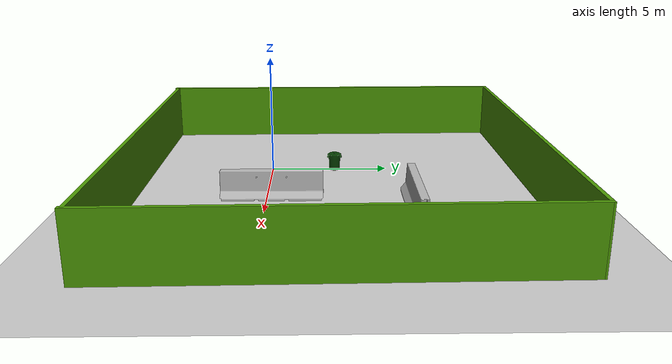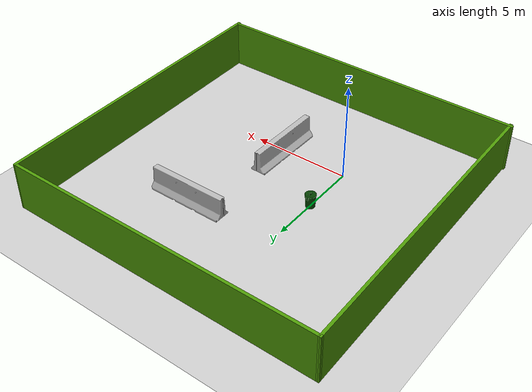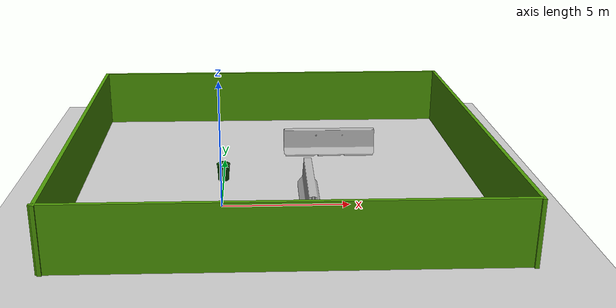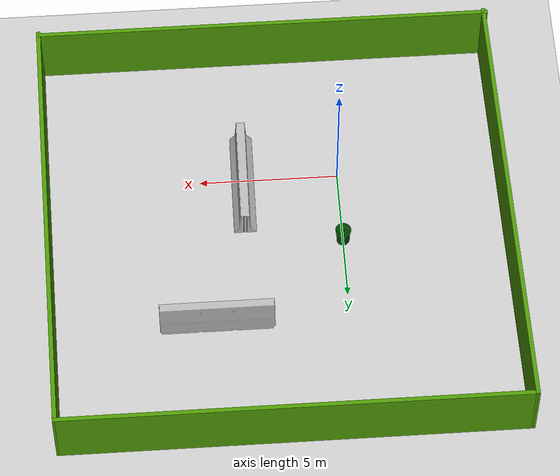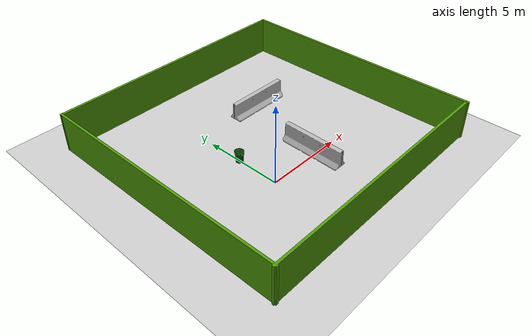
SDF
<sdf version="1.7">
 <world name="default">
  <light name="sun" type="directional">
   <pose>0 0 10 0 -0 0</pose>
   <diffuse>0.8 0.8 0.8 1</diffuse>
   <specular>0.2 0.2 0.2 1</specular>
   <attenuation>
    <range>1000</range>
    <constant>0.9</constant>
    <linear>0.01</linear>
    <quadratic>0.001</quadratic>
   </attenuation>
   <direction>-0.5 0.1 -0.9</direction>
   <spot><inner_angle>0</inner_angle><outer_angle>0</outer_angle><falloff>0</falloff></spot>
  </light>
  <model name="ground_plane">
   <static>1</static>
   <link name="link">
    <collision name="collision">
     <geometry><plane><normal>0 0 1</normal><size>100 100</size></plane></geometry>
     <surface>
      <contact><collide_bitmask>65535</collide_bitmask></contact>
      <friction><ode><mu>100</mu><mu2>50</mu2></ode></friction>
     </surface>
    </collision>
    <visual name="visual">
     <cast_shadows>0</cast_shadows>
     <geometry><plane><normal>0 0 1</normal><size>100 100</size></plane></geometry>
     <material>
      <script><uri>file://media/materials/scripts/gazebo.material</uri><name>Gazebo/Grey</name></script>
     </material>
    </visual>
   </link>
  </model>
  <gravity>0 0 -9.8</gravity>
  <magnetic_field>6e-06 2.3e-05 -4.2e-05</magnetic_field>
  <atmosphere type="adiabatic"/>
  <physics type="ode">
   <max_step_size>0.001</max_step_size>
   <real_time_factor>1</real_time_factor>
   <real_time_update_rate>1000</real_time_update_rate>
  </physics>
  <scene><ambient>0.4 0.4 0.4 1</ambient><background>0.7 0.7 0.7 1</background><shadows>1</shadows></scene>
  <spherical_coordinates>
   <surface_model>EARTH_WGS84</surface_model>
   <latitude_deg>0</latitude_deg>
   <longitude_deg>0</longitude_deg>
   <elevation>0</elevation>
   <heading_deg>0</heading_deg>
  </spherical_coordinates>
  <model name="first_2015_trash_can">
   <link name="link">
    <inertial>
     <pose>0 0 0.3683 0 -0 0</pose>
     <mass>4.83076</mass>
     <inertia>
      <ixx>0.281534</ixx>
      <ixy>0</ixy>
      <ixz>0</ixz>
      <iyy>0.281534</iyy>
      <iyz>0</iyz>
      <izz>0.126223</izz>
     </inertia>
    </inertial>
    <visual name="visual">
     <geometry><mesh><uri>model://first_2015_trash_can/meshes/trash_can.dae</uri></mesh></geometry>
    </visual>
    <collision name="collision">
     <geometry><mesh><uri>model://first_2015_trash_can/meshes/trash_can.dae</uri></mesh></geometry>
    </collision>
   </link>
   <pose>0.0013 2.74082 -3e-06 1e-06 1.2e-05 -0.001142</pose>
  </model>
  <model name="jersey_barrier">
   <static>1</static>
   <link name="link">
    <visual name="visual">
     <geometry><mesh><uri>model://jersey_barrier/meshes/jersey_barrier.dae</uri></mesh></geometry>
    </visual>
    <collision name="upright">
     <pose>0 0 0.5715 0 -0 0</pose>
     <geometry><box><size>4.06542 0.3063 1.143</size></box></geometry>
    </collision>
    <collision name="base">
     <pose>0 0 0.032258 0 -0 0</pose>
     <geometry><box><size>4.06542 0.8107 0.064516</size></box></geometry>
    </collision>
    <collision name="base2">
     <pose>0 0 0.1 0 -0 0</pose>
     <geometry><box><size>4.06542 0.65 0.1</size></box></geometry>
    </collision>
    <collision name="base3">
     <pose>0 0 0.2 0 -0 0</pose>
     <geometry><box><size>4.06542 0.5 0.1</size></box></geometry>
    </collision>
    <collision name="left-angle">
     <pose>0 -0.224 0.2401 0.9 -0 0</pose>
     <geometry><box><size>4.06542 0.5 0.064516</size></box></geometry>
    </collision>
    <collision name="right-angle">
     <pose>0 0.224 0.2401 -0.9 0 0</pose>
     <geometry><box><size>4.06542 0.5 0.064516</size></box></geometry>
    </collision>
   </link>
   <pose>3.45058 0.20811 0 0 0 -1.58285</pose>
  </model>
  <model name="jersey_barrier_0">
   <static>1</static>
   <link name="link">
    <visual name="visual">
     <geometry><mesh><uri>model://jersey_barrier/meshes/jersey_barrier.dae</uri></mesh></geometry>
    </visual>
    <collision name="upright">
     <pose>0 0 0.5715 0 -0 0</pose>
     <geometry><box><size>4.06542 0.3063 1.143</size></box></geometry>
    </collision>
    <collision name="base">
     <pose>0 0 0.032258 0 -0 0</pose>
     <geometry><box><size>4.06542 0.8107 0.064516</size></box></geometry>
    </collision>
    <collision name="base2">
     <pose>0 0 0.1 0 -0 0</pose>
     <geometry><box><size>4.06542 0.65 0.1</size></box></geometry>
    </collision>
    <collision name="base3">
     <pose>0 0 0.2 0 -0 0</pose>
     <geometry><box><size>4.06542 0.5 0.1</size></box></geometry>
    </collision>
    <collision name="left-angle">
     <pose>0 -0.224 0.2401 0.9 -0 0</pose>
     <geometry><box><size>4.06542 0.5 0.064516</size></box></geometry>
    </collision>
    <collision name="right-angle">
     <pose>0 0.224 0.2401 -0.9 0 0</pose>
     <geometry><box><size>4.06542 0.5 0.064516</size></box></geometry>
    </collision>
   </link>
   <pose>4.67893 5.80775 0 0 -0 0</pose>
  </model>
  <model name="my_world03">
   <pose>2.32102 2.69948 0 0 -0 0</pose>
   <link name="Wall_24">
    <collision name="Wall_24_Collision">
     <geometry><box><size>16.1381 0.15 2.5</size></box></geometry>
     <pose>0 0 1.25 0 -0 0</pose>
    </collision>
    <visual name="Wall_24_Visual">
     <pose>0 0 1.25 0 -0 0</pose>
     <geometry><box><size>16.1381 0.15 2.5</size></box></geometry>
     <material>
      <script><uri>file://media/materials/scripts/gazebo.material</uri><name>Gazebo/Grey</name></script>
      <ambient>0.305882 0.603922 0.0235294 1</ambient>
     </material>
     <meta><layer>0</layer></meta>
    </visual>
    <pose>8.175 0 0 0 -0 -1.55752</pose>
   </link>
   <link name="Wall_25">
    <collision name="Wall_25_Collision">
     <geometry><box><size>16.5 0.15 2.5</size></box></geometry>
     <pose>0 0 1.25 0 -0 0</pose>
    </collision>
    <visual name="Wall_25_Visual">
     <pose>0 0 1.25 0 -0 0</pose>
     <geometry><box><size>16.5 0.15 2.5</size></box></geometry>
     <material>
      <script><uri>file://media/materials/scripts/gazebo.material</uri><name>Gazebo/Grey</name></script>
      <ambient>0.305882 0.603922 0.0235294 1</ambient>
     </material>
     <meta><layer>0</layer></meta>
    </visual>
    <pose>0.035379 -7.92259 0 0 -0 3.14159</pose>
   </link>
   <link name="Wall_26">
    <collision name="Wall_26_Collision">
     <geometry><box><size>16.1381 0.15 2.5</size></box></geometry>
     <pose>0 0 1.25 0 -0 0</pose>
    </collision>
    <visual name="Wall_26_Visual">
     <pose>0 0 1.25 0 -0 0</pose>
     <geometry><box><size>16.1381 0.15 2.5</size></box></geometry>
     <material>
      <script><uri>file://media/materials/scripts/gazebo.material</uri><name>Gazebo/Grey</name></script>
      <ambient>0.305882 0.603922 0.0235294 1</ambient>
     </material>
     <meta><layer>0</layer></meta>
    </visual>
    <pose>-8.175 0 0 0 -0 1.58407</pose>
   </link>
   <link name="Wall_27">
    <collision name="Wall_27_Collision">
     <geometry><box><size>16.5 0.15 2.5</size></box></geometry>
     <pose>0 0 1.25 0 -0 0</pose>
    </collision>
    <visual name="Wall_27_Visual">
     <pose>0 0 1.25 0 -0 0</pose>
     <geometry><box><size>16.5 0.15 2.5</size></box></geometry>
     <material>
      <script><uri>file://media/materials/scripts/gazebo.material</uri><name>Gazebo/Grey</name></script>
      <ambient>0.305882 0.603922 0.0235294 1</ambient>
     </material>
     <meta><layer>0</layer></meta>
    </visual>
    <pose>-0.106135 7.99334 0 0 -0 0</pose>
   </link>
   <static>1</static>
  </model>
 </world>
</sdf>
